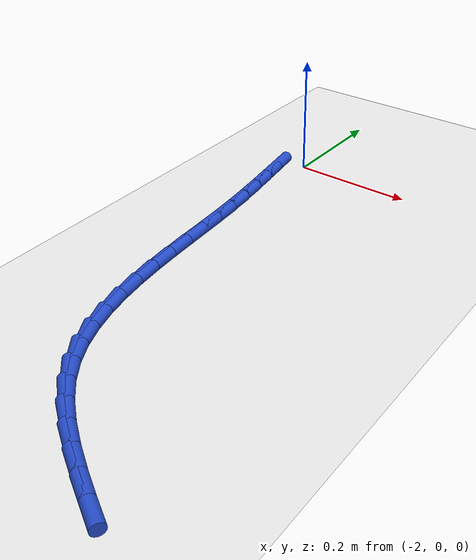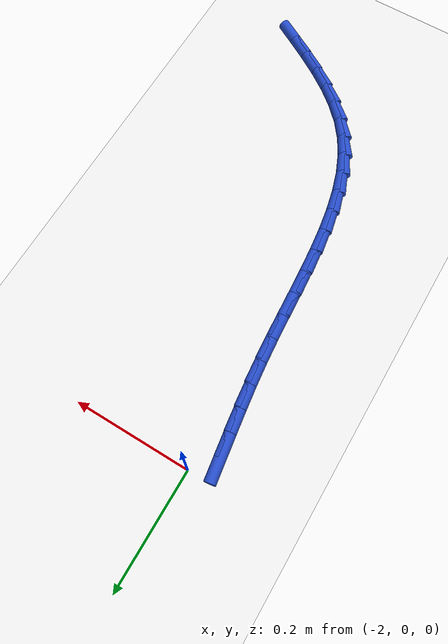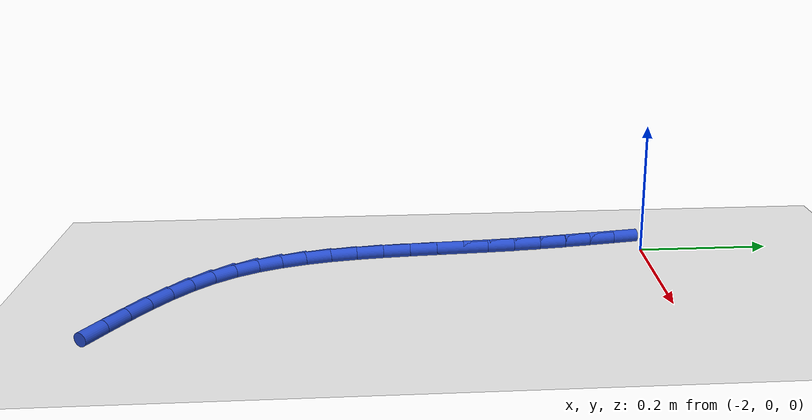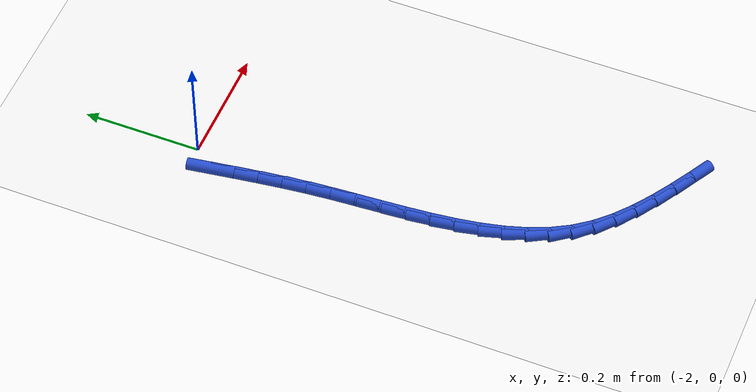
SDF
<sdf version="1.6">
 <world name="default">
  <model name="ground_plane">
   <static>1</static>
   <link name="link">
    <collision name="collision">
     <geometry><plane><normal>0 0 1</normal><size>100 100</size></plane></geometry>
     <surface><friction><ode><mu>100</mu><mu2>50</mu2></ode></friction></surface>
    </collision>
    <visual name="visual">
     <cast_shadows>0</cast_shadows>
     <geometry><plane><normal>0 0 1</normal><size>100 100</size></plane></geometry>
     <material>
      <script><uri>file://media/materials/scripts/gazebo.material</uri><name>Gazebo/WhiteGlow</name></script>
     </material>
    </visual>
   </link>
  </model>
  <model name="line">
   <link name="link_86">
    <pose>-2.032870302784218 -0.03879319522196866 0.01 0 1.57 -1.4219786416331668</pose>
    <collision name="collision">
     <geometry><cylinder><radius>0.01</radius><length>0.08</length></cylinder></geometry>
    </collision>
    <visual name="visual">
     <material>
      <script><name>Gazebo/Blue</name><uri>file://media/materials/scripts/gazebo.material</uri></script>
     </material>
     <geometry><cylinder><radius>0.01</radius><length>0.08</length></cylinder></geometry>
    </visual>
   </link>
   <link name="link_87">
    <pose>-2.026964116164702 -0.07818717751819974 0.01 0 1.57 -1.4275867816083252</pose>
    <collision name="collision">
     <geometry><cylinder><radius>0.01</radius><length>0.08</length></cylinder></geometry>
    </collision>
    <visual name="visual">
     <material>
      <script><name>Gazebo/Blue</name><uri>file://media/materials/scripts/gazebo.material</uri></script>
     </material>
     <geometry><cylinder><radius>0.01</radius><length>0.08</length></cylinder></geometry>
    </visual>
   </link>
   <link name="link_88">
    <pose>-2.0212223154171975 -0.11800640990438906 0.01 0 1.57 -1.4402006304692334</pose>
    <collision name="collision">
     <geometry><cylinder><radius>0.01</radius><length>0.08</length></cylinder></geometry>
    </collision>
    <visual name="visual">
     <material>
      <script><name>Gazebo/Blue</name><uri>file://media/materials/scripts/gazebo.material</uri></script>
     </material>
     <geometry><cylinder><radius>0.01</radius><length>0.08</length></cylinder></geometry>
    </visual>
   </link>
   <link name="link_89">
    <pose>-2.0159312877946105 -0.1582903825431786 0.01 0 1.57 -1.4596101042756437</pose>
    <collision name="collision">
     <geometry><cylinder><radius>0.01</radius><length>0.08</length></cylinder></geometry>
    </collision>
    <visual name="visual">
     <material>
      <script><name>Gazebo/Blue</name><uri>file://media/materials/scripts/gazebo.material</uri></script>
     </material>
     <geometry><cylinder><radius>0.01</radius><length>0.08</length></cylinder></geometry>
    </visual>
   </link>
   <link name="link_90">
    <pose>-2.011377420549846 -0.19907858559720806 0.01 0 1.57 -1.4841811122790962</pose>
    <collision name="collision">
     <geometry><cylinder><radius>0.01</radius><length>0.08</length></cylinder></geometry>
    </collision>
    <visual name="visual">
     <material>
      <script><name>Gazebo/Blue</name><uri>file://media/materials/scripts/gazebo.material</uri></script>
     </material>
     <geometry><cylinder><radius>0.01</radius><length>0.08</length></cylinder></geometry>
    </visual>
   </link>
   <link name="link_91">
    <pose>-2.007790644908977 -0.24038543460381878 0.01 0 1.57 -1.5022552976345653</pose>
    <collision name="collision">
     <geometry><cylinder><radius>0.01</radius><length>0.08</length></cylinder></geometry>
    </collision>
    <visual name="visual">
     <material>
      <script><name>Gazebo/Blue</name><uri>file://media/materials/scripts/gazebo.material</uri></script>
     </material>
     <geometry><cylinder><radius>0.01</radius><length>0.08</length></cylinder></geometry>
    </visual>
   </link>
   <link name="link_92">
    <pose>-2.004932671149639 -0.28201738741188637 0.01 0 1.57 -1.508490369314446</pose>
    <collision name="collision">
     <geometry><cylinder><radius>0.01</radius><length>0.08</length></cylinder></geometry>
    </collision>
    <visual name="visual">
     <material>
      <script><name>Gazebo/Blue</name><uri>file://media/materials/scripts/gazebo.material</uri></script>
     </material>
     <geometry><cylinder><radius>0.01</radius><length>0.08</length></cylinder></geometry>
    </visual>
   </link>
   <link name="link_93">
    <pose>-2.002333600575328 -0.32367803405317774 0.01 0 1.57 -1.5029719027319648</pose>
    <collision name="collision">
     <geometry><cylinder><radius>0.01</radius><length>0.08</length></cylinder></geometry>
    </collision>
    <visual name="visual">
     <material>
      <script><name>Gazebo/Blue</name><uri>file://media/materials/scripts/gazebo.material</uri></script>
     </material>
     <geometry><cylinder><radius>0.01</radius><length>0.08</length></cylinder></geometry>
    </visual>
   </link>
   <link name="link_94">
    <pose>-1.9995218858064148 -0.365070232306168 0.01 0 1.57 -1.4853765543723403</pose>
    <collision name="collision">
     <geometry><cylinder><radius>0.01</radius><length>0.08</length></cylinder></geometry>
    </collision>
    <visual name="visual">
     <material>
      <script><name>Gazebo/Blue</name><uri>file://media/materials/scripts/gazebo.material</uri></script>
     </material>
     <geometry><cylinder><radius>0.01</radius><length>0.08</length></cylinder></geometry>
    </visual>
   </link>
   <link name="link_95">
    <pose>-1.9960259794632704 -0.40589683994932957 0.01 0 1.57 -1.4549214903388552</pose>
    <collision name="collision">
     <geometry><cylinder><radius>0.01</radius><length>0.08</length></cylinder></geometry>
    </collision>
    <visual name="visual">
     <material>
      <script><name>Gazebo/Blue</name><uri>file://media/materials/scripts/gazebo.material</uri></script>
     </material>
     <geometry><cylinder><radius>0.01</radius><length>0.08</length></cylinder></geometry>
    </visual>
   </link>
   <link name="link_96">
    <pose>-1.9913743341662686 -0.4458607147611379 0.01 0 1.57 -1.4103753269256878</pose>
    <collision name="collision">
     <geometry><cylinder><radius>0.01</radius><length>0.08</length></cylinder></geometry>
    </collision>
    <visual name="visual">
     <material>
      <script><name>Gazebo/Blue</name><uri>file://media/materials/scripts/gazebo.material</uri></script>
     </material>
     <geometry><cylinder><radius>0.01</radius><length>0.08</length></cylinder></geometry>
    </visual>
   </link>
   <link name="link_97">
    <pose>-1.9850954025357794 -0.48466471452006715 0.01 0 1.57 -1.3501269121032808</pose>
    <collision name="collision">
     <geometry><cylinder><radius>0.01</radius><length>0.08</length></cylinder></geometry>
    </collision>
    <visual name="visual">
     <material>
      <script><name>Gazebo/Blue</name><uri>file://media/materials/scripts/gazebo.material</uri></script>
     </material>
     <geometry><cylinder><radius>0.01</radius><length>0.08</length></cylinder></geometry>
    </visual>
   </link>
   <link name="link_98">
    <pose>-1.9767176371921755 -0.5220116970045916 0.01 0 1.57 -1.2723870069478223</pose>
    <collision name="collision">
     <geometry><cylinder><radius>0.01</radius><length>0.08</length></cylinder></geometry>
    </collision>
    <visual name="visual">
     <material>
      <script><name>Gazebo/Blue</name><uri>file://media/materials/scripts/gazebo.material</uri></script>
     </material>
     <geometry><cylinder><radius>0.01</radius><length>0.08</length></cylinder></geometry>
    </visual>
   </link>
   <link name="link_99">
    <pose>-1.9657694907558287 -0.557604519993186 0.01 0 1.57 -1.1756384105161668</pose>
    <collision name="collision">
     <geometry><cylinder><radius>0.01</radius><length>0.08</length></cylinder></geometry>
    </collision>
    <visual name="visual">
     <material>
      <script><name>Gazebo/Blue</name><uri>file://media/materials/scripts/gazebo.material</uri></script>
     </material>
     <geometry><cylinder><radius>0.01</radius><length>0.08</length></cylinder></geometry>
    </visual>
   </link>
   <link name="link_100">
    <pose>-1.9517794158471113 -0.5911460412643239 0.01 0 1.57 -1.0594438168292521</pose>
    <collision name="collision">
     <geometry><cylinder><radius>0.01</radius><length>0.08</length></cylinder></geometry>
    </collision>
    <visual name="visual">
     <material>
      <script><name>Gazebo/Blue</name><uri>file://media/materials/scripts/gazebo.material</uri></script>
     </material>
     <geometry><cylinder><radius>0.01</radius><length>0.08</length></cylinder></geometry>
    </visual>
   </link>
   <link name="link_101">
    <pose>-1.934275865086394 -0.6223391185964796 0.01 0 1.57 -0.9266750343821404</pose>
    <collision name="collision">
     <geometry><cylinder><radius>0.01</radius><length>0.08</length></cylinder></geometry>
    </collision>
    <visual name="visual">
     <material>
      <script><name>Gazebo/Blue</name><uri>file://media/materials/scripts/gazebo.material</uri></script>
     </material>
     <geometry><cylinder><radius>0.01</radius><length>0.08</length></cylinder></geometry>
    </visual>
   </link>
   <link name="link_102">
    <pose>-1.9128205282717938 -0.6509093030822045 0.01 0 1.57 -0.8003874635567276</pose>
    <collision name="collision">
     <geometry><cylinder><radius>0.01</radius><length>0.08</length></cylinder></geometry>
    </collision>
    <visual name="visual">
     <material>
      <script><name>Gazebo/Blue</name><uri>file://media/materials/scripts/gazebo.material</uri></script>
     </material>
     <geometry><cylinder><radius>0.01</radius><length>0.08</length></cylinder></geometry>
    </visual>
   </link>
   <link name="link_103">
    <pose>-1.8875350107033102 -0.676964438752358 0.01 0 1.57 -0.698694380104303</pose>
    <collision name="collision">
     <geometry><cylinder><radius>0.01</radius><length>0.08</length></cylinder></geometry>
    </collision>
    <visual name="visual">
     <material>
      <script><name>Gazebo/Blue</name><uri>file://media/materials/scripts/gazebo.material</uri></script>
     </material>
     <geometry><cylinder><radius>0.01</radius><length>0.08</length></cylinder></geometry>
    </visual>
   </link>
   <link name="link_104">
    <pose>-1.8590063781155268 -0.7009301715857791 0.01 0 1.57 -0.6212464167589943</pose>
    <collision name="collision">
     <geometry><cylinder><radius>0.01</radius><length>0.08</length></cylinder></geometry>
    </collision>
    <visual name="visual">
     <material>
      <script><name>Gazebo/Blue</name><uri>file://media/materials/scripts/gazebo.material</uri></script>
     </material>
     <geometry><cylinder><radius>0.01</radius><length>0.08</length></cylinder></geometry>
    </visual>
   </link>
   <link name="link_105">
    <pose>-1.8278358400282753 -0.7232418044991876 0.01 0 1.57 -0.5658374689213359</pose>
    <collision name="collision">
     <geometry><cylinder><radius>0.01</radius><length>0.08</length></cylinder></geometry>
    </collision>
    <visual name="visual">
     <material>
      <script><name>Gazebo/Blue</name><uri>file://media/materials/scripts/gazebo.material</uri></script>
     </material>
     <geometry><cylinder><radius>0.01</radius><length>0.08</length></cylinder></geometry>
    </visual>
   </link>
   <link name="link_106">
    <pose>-1.7946246059613853 -0.7443346404093052 0.01 0 1.57 -0.5301481229276143</pose>
    <collision name="collision">
     <geometry><cylinder><radius>0.01</radius><length>0.08</length></cylinder></geometry>
    </collision>
    <visual name="visual">
     <material>
      <script><name>Gazebo/Blue</name><uri>file://media/materials/scripts/gazebo.material</uri></script>
     </material>
     <geometry><cylinder><radius>0.01</radius><length>0.08</length></cylinder></geometry>
    </visual>
   </link>
   <link name="link_107">
    <pose>-1.7599738854346898 -0.7646439822328536 0.01 0 1.57 -0.5123592696535119</pose>
    <collision name="collision">
     <geometry><cylinder><radius>0.01</radius><length>0.08</length></cylinder></geometry>
    </collision>
    <visual name="visual">
     <material>
      <script><name>Gazebo/Blue</name><uri>file://media/materials/scripts/gazebo.material</uri></script>
     </material>
     <geometry><cylinder><radius>0.01</radius><length>0.08</length></cylinder></geometry>
    </visual>
   </link>
  </model>
 </world>
</sdf>
